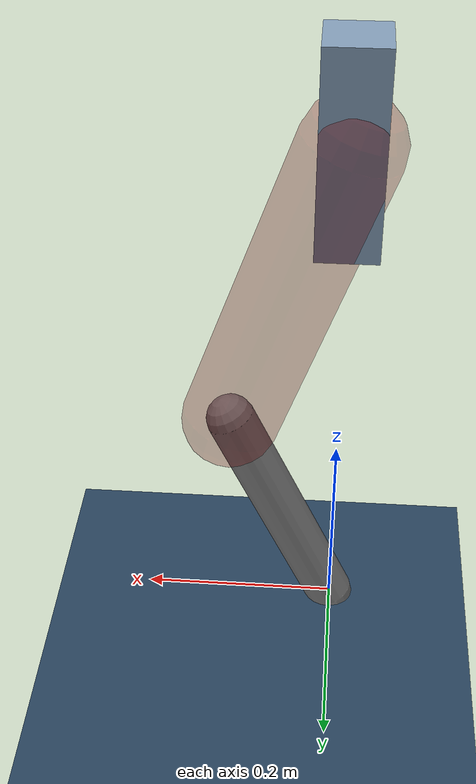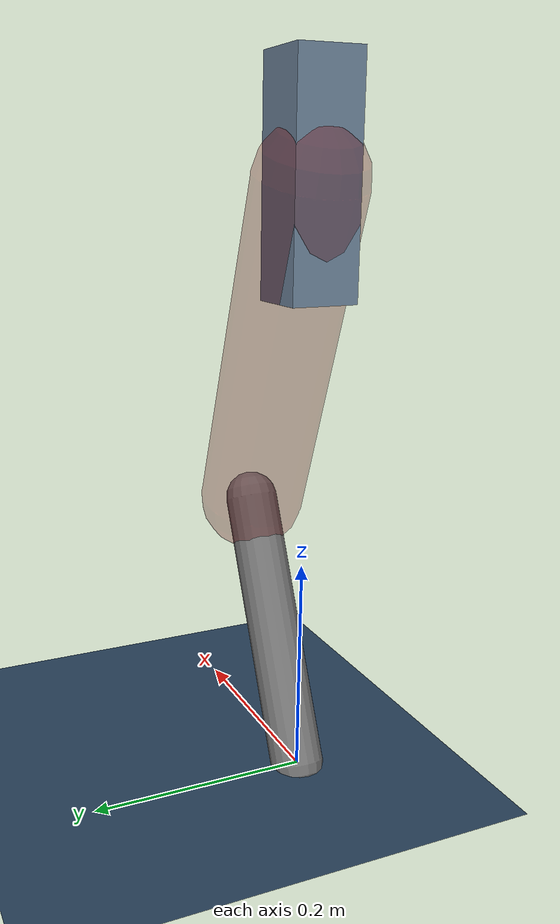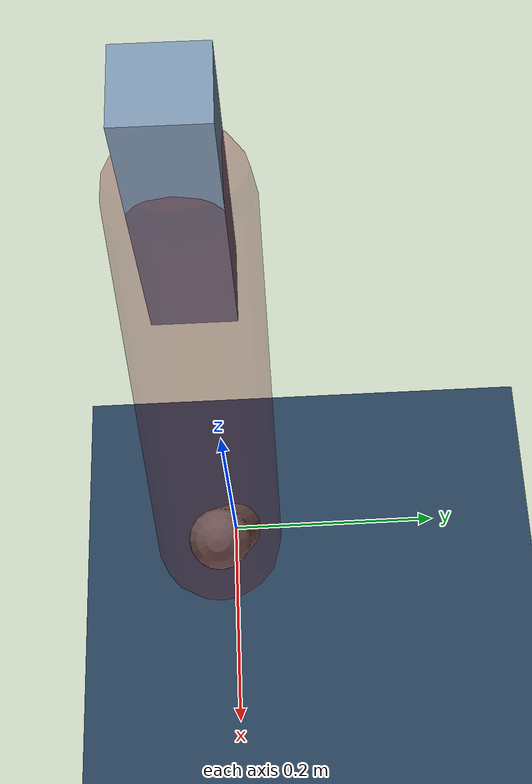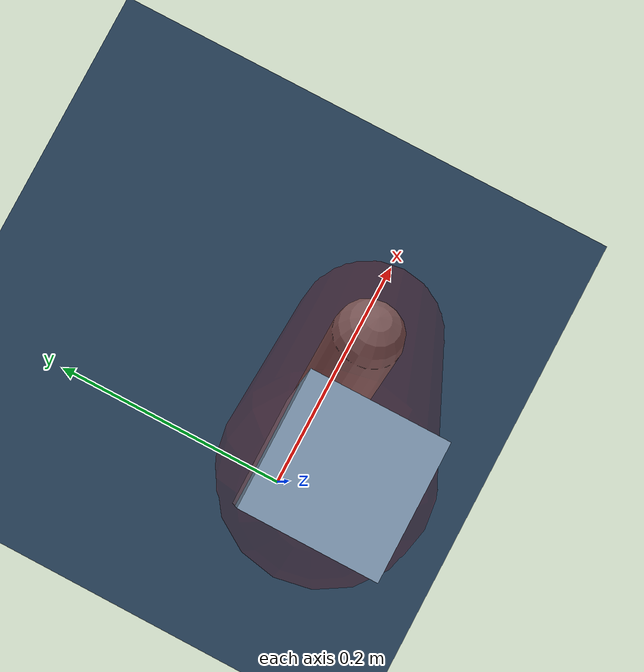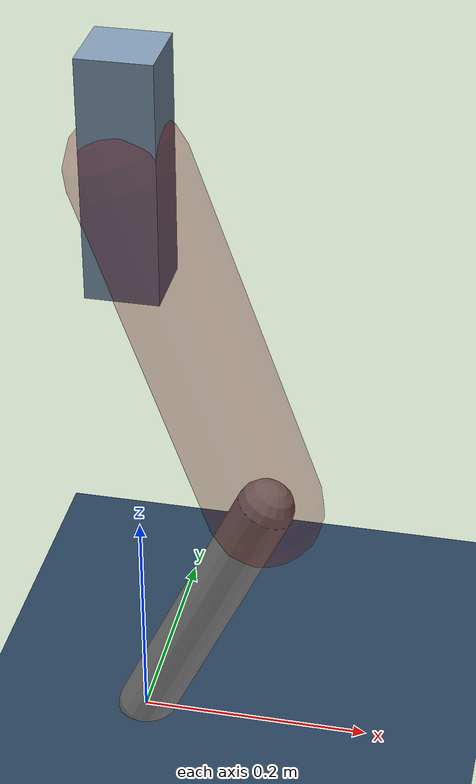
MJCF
<mujoco model="Hopper2D">
	<compiler inertiafromgeom="true" angle="radian" />
	<option timestep="0.001" integrator="implicit" cone="elliptic" solver="Newton" tolerance="1e-10" />

	<default>
		<geom contype="1" conaffinity="1" condim="3" friction="2 0.005 0.0001" solref="0.005 1" />
		<joint limited="true" damping="0.1" />
	</default>

	<asset>
		<texture name="skybox" type="skybox" builtin="gradient" rgb1=".4 .6 .8" rgb2="0 0 0" width="800" height="800" />
		<texture name="grid" type="2d" builtin="checker" rgb1=".1 .2 .3" rgb2=".2 .3 .4" width="300" height="300" mark="edge" markrgb=".2 .3 .4" />
		<material name="ground" texture="grid" texrepeat="1 1" texuniform="true" reflectance="0.1" />
		<material name="leg" rgba="0.5 0.6 0.7 1" />
	</asset>

	<worldbody>

		<geom name="floor" type="plane" size="5 5 0.25" material="ground" />

		<light directional="false" diffuse="0.8 0.8 0.8" specular="0.3 0.3 0.3" pos="0 0 2" dir="0 0 -1" />
		<light mode="targetbodycom" target="base" directional="false" diffuse="0.8 0.8 0.8" specular="0.3 0.3 0.3" pos="0 0 2" dir="0 0 -1" />

		<camera name="fixed" pos="0 -2 1" xyaxes="1 0 0 0 0 1" />
		<camera name="tracking" mode="trackcom" pos="0 -3 1" />

		<body name="root" pos="0 0 0.537030175855385">
			<joint name="slide_x" type="slide" axis="1 0 0" range="-100 100" />
			<joint name="slide_z" type="slide" axis="0 0 1" range="0 10" />

			<body name="base" pos="0 0 0">
				<geom name="torso" type="box" size="0.03 0.03 0.1" mass="2.918" material="leg" />

				<body name="link1" pos="0 0 0" euler="0 1.2272647234856306 0">
					<joint type="hinge" axis="0 -1 0" pos="0 0 0" name="hinge1" limited="true" range="-3.14 3.14" stiffness="0" damping="0.1" />
					<geom name="thigh" type="capsule" fromto="0 0 0 0.3215442675218539 0 0" size="0.05" rgba="0.5 0 0 0.3" mass="1.0474695223090056" />

					<body name="link2" pos="0.3215442675218539 0 0" euler="0 0.7765534901894198 0">
						<joint type="hinge" axis="0 -1 0" pos="0 0 0" name="hinge2" limited="true" range="-3.14 3.14" stiffness="0" damping="0.1" />
						<geom name="shank" type="capsule" fromto="0 0 0 0.2580951003880962 0 0" size="0.025" mass="0.44917608031047696" />

					</body>
				</body>
			</body>
		</body>
	</worldbody>

	<actuator>
		<motor name="torque1" joint="hinge1" ctrlrange="-101.6898833974763 101.6898833974763" ctrllimited="true" gear="1" />
		<motor name="torque2" joint="hinge2" ctrlrange="-147.1223755649137 147.1223755649137" ctrllimited="true" gear="1" />
	</actuator>
</mujoco>
